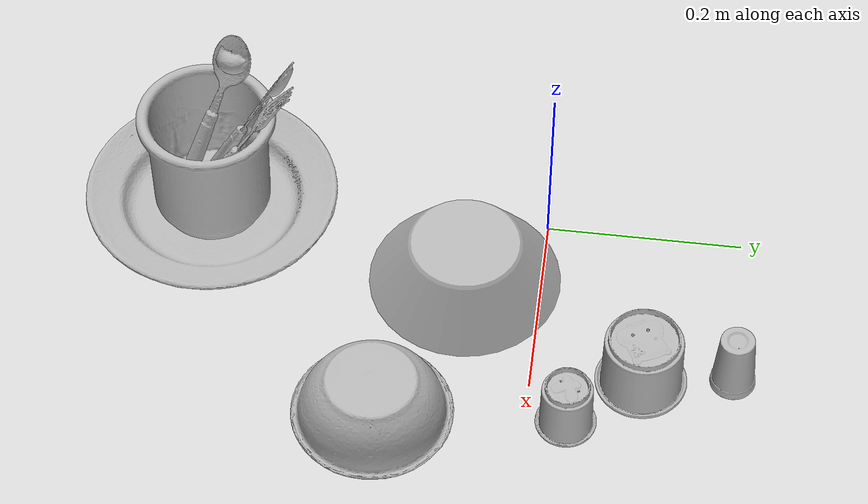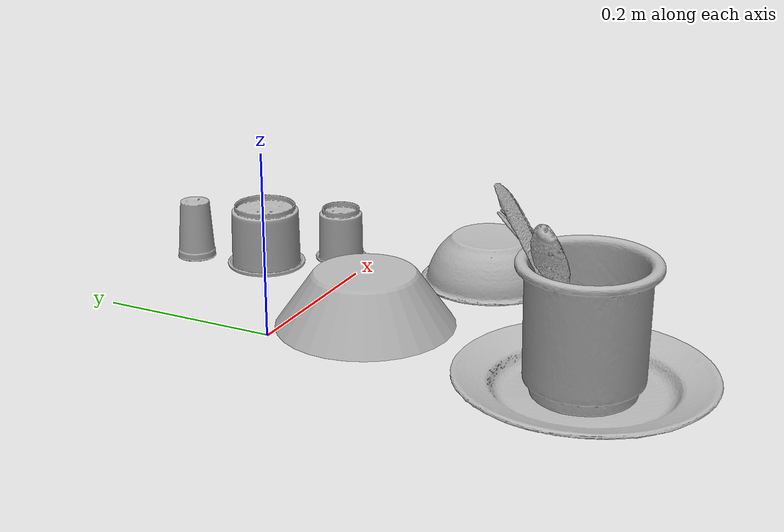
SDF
<?xml version="1.0" ?>
<sdf version="1.4">

  <world name="default">

    <light name="light1" type="point">

      <pose>0 0 1 0 0 0</pose>

      <diffuse>3 3 3 1</diffuse>

      <specular>3 3 3 1</specular>

    </light>

    <light name="light2" type="point">

      <pose>0 0.5 2 0 0 0</pose>

      <diffuse>1 1 1 1</diffuse>

      <specular>1 1 1 1</specular>

    </light>

    <light name="light3" type="point">

      <pose>0 0.5 2 0 0 0</pose>

      <diffuse>3 3 3 1</diffuse>

      <specular>3 3 3 1</specular>

    </light>

    <scene>

      <ambient>0.7 0.7 0.7</ambient>

    </scene>

    <model name="plate1">

      <link name="link_plate1">

        <collision name="default">

          <geometry>

            <mesh>

              <uri>model://plate/collision_meshes/collision.obj</uri>

              <scale>1.0 1.0 1.0</scale>

            </mesh>

          </geometry>

          <surface>

            <friction>

              <ode>

                <mu>0.5</mu>

                <mu2>0.5</mu2>

              </ode>

            </friction>

          </surface>

        </collision>

        <visual name="default">

          <geometry>

            <mesh>

              <uri>model://plate/visual_meshes/visual.dae</uri>

              <scale>1.0 1.0 1.0</scale>

            </mesh>

          </geometry>

        </visual>

        <inertial>

          <mass>0.188415065407753</mass>

          <pose>-0.0006044681649655104 0.0002782578521873802 -0.0010561991948634386 0.0022187970116661695 -0.0032254679619122127 0.4526056514331616</pose>

          <inertia>

            <ixx>0.00088140933</ixx>

            <iyy>0.000872979</iyy>

            <izz>0.0017239053</izz>

            <ixy>0</ixy>

            <ixz>0</ixz>

            <iyz>0</iyz>

          </inertia>

        </inertial>

      </link>

      <pose>0.009948790073394775 -0.35001340508461 0.013733495026826859 -1.2999873538440487e-06 -6.855991948289249e-06 -0.0003631257752966871</pose>

    </model>

    <model name="cup1">

      <link name="link_cup1">

        <collision name="default">

          <geometry>

            <mesh>

              <uri>model://d_cups/collision_meshes/collision.obj</uri>

              <scale>2.0 2.0 2.0</scale>

            </mesh>

          </geometry>

          <surface>

            <friction>

              <ode>

                <mu>0.5</mu>

                <mu2>0.5</mu2>

              </ode>

            </friction>

          </surface>

        </collision>

        <visual name="default">

          <geometry>

            <mesh>

              <uri>model://d_cups/visual_meshes/visual.dae</uri>

              <scale>2.0 2.0 2.0</scale>

            </mesh>

          </geometry>

        </visual>

        <inertial>

          <mass>0.39843064546585083</mass>

          <pose>0.0016136104241013527 0.0038234808016568422 -0.004533304367214441 0.24012134810188138 -0.24709791903716813 0.5942561701250738</pose>

          <inertia>

            <ixx>0.0013343208</ixx>

            <iyy>0.001330459</iyy>

            <izz>0.001207787</izz>

            <ixy>0</ixy>

            <ixz>0</ixz>

            <iyz>0</iyz>

          </inertia>

        </inertial>

      </link>

      <pose>0.00935608521103859 -0.3493598997592926 0.07326650619506836 0.001811140892218468 -0.009745304062483647 -0.02693424913792451</pose>

    </model>

    <model name="silverware1">

      <link name="link_silverware1">

        <collision name="default">

          <geometry>

            <mesh>

              <uri>model://knife/collision_meshes/collision.obj</uri>

              <scale>1.0 1.0 1.0</scale>

            </mesh>

          </geometry>

          <surface>

            <friction>

              <ode>

                <mu>0.5</mu>

                <mu2>0.5</mu2>

              </ode>

            </friction>

          </surface>

        </collision>

        <visual name="default">

          <geometry>

            <mesh>

              <uri>model://knife/visual_meshes/visual.dae</uri>

              <scale>1.0 1.0 1.0</scale>

            </mesh>

          </geometry>

        </visual>

        <inertial>

          <mass>0.027211036533117294</mass>

          <pose>-0.02378525771200657 0.0015275125624611974 5.062023410573602e-05 0.0730549860308878 0.01724841828598218 -0.007409817457274567</pose>

          <inertia>

            <ixx>7.723595e-07</ixx>

            <iyy>0.000104540384</iyy>

            <izz>0.00010478913</izz>

            <ixy>0</ixy>

            <ixz>0</ixz>

            <iyz>0</iyz>

          </inertia>

        </inertial>

      </link>

      <pose>-0.001595915644429624 -0.31288671493530273 0.1160086914896965 -0.5706196693837503 -1.0744898943072436 1.6994033232196273</pose>

    </model>

    <model name="silverware2">

      <link name="link_silverware2">

        <collision name="default">

          <geometry>

            <mesh>

              <uri>model://fork/collision_meshes/collision.obj</uri>

              <scale>1.0 1.0 1.0</scale>

            </mesh>

          </geometry>

          <surface>

            <friction>

              <ode>

                <mu>0.5</mu>

                <mu2>0.5</mu2>

              </ode>

            </friction>

          </surface>

        </collision>

        <visual name="default">

          <geometry>

            <mesh>

              <uri>model://fork/visual_meshes/visual.dae</uri>

              <scale>1.0 1.0 1.0</scale>

            </mesh>

          </geometry>

        </visual>

        <inertial>

          <mass>0.01567319966852665</mass>

          <pose>-0.029570044949650764 0.00046588233090005815 0.0003218860656488687 -0.013551693849150472 -0.010977837004960822 0.014453899894816049</pose>

          <inertia>

            <ixx>5.494343e-07</ixx>

            <iyy>4.0918225e-05</iyy>

            <izz>4.1163967e-05</izz>

            <ixy>0</ixy>

            <ixz>0</ixz>

            <iyz>0</iyz>

          </inertia>

        </inertial>

      </link>

      <pose>0.02090679667890072 -0.3192199170589447 0.1037764698266983 2.7818295991574216 -0.964735334628543 1.9127034169803112</pose>

    </model>

    <model name="silverware3">

      <link name="link_silverware3">

        <collision name="default">

          <geometry>

            <mesh>

              <uri>model://spoon/collision_meshes/collision.obj</uri>

              <scale>1.0 1.0 1.0</scale>

            </mesh>

          </geometry>

          <surface>

            <friction>

              <ode>

                <mu>0.5</mu>

                <mu2>0.5</mu2>

              </ode>

            </friction>

          </surface>

        </collision>

        <visual name="default">

          <geometry>

            <mesh>

              <uri>model://spoon/visual_meshes/visual.dae</uri>

              <scale>1.0 1.0 1.0</scale>

            </mesh>

          </geometry>

        </visual>

        <inertial>

          <mass>0.020675545558333397</mass>

          <pose>-0.0055263228714466095 -0.001603417913429439 -0.0007271659560501575 0.03521671071703309 -0.03906584129558259 0.006150610048623938</pose>

          <inertia>

            <ixx>1.1500075e-06</ixx>

            <iyy>7.866978e-05</iyy>

            <izz>7.923691e-05</izz>

            <ixy>0</ixy>

            <ixz>0</ixz>

            <iyz>0</iyz>

          </inertia>

        </inertial>

      </link>

      <pose>-0.021952524781227112 -0.3531002998352051 0.10560663044452667 0.27789784083530794 -0.9737477019147132 2.5504949174839795</pose>

    </model>

    <model name="cup3">

      <link name="link_cup3">

        <collision name="default">

          <geometry>

            <mesh>

              <uri>model://h_cups/collision_meshes/collision.obj</uri>

              <scale>1.0 1.0 1.0</scale>

            </mesh>

          </geometry>

          <surface>

            <friction>

              <ode>

                <mu>0.5</mu>

                <mu2>0.5</mu2>

              </ode>

            </friction>

          </surface>

        </collision>

        <visual name="default">

          <geometry>

            <mesh>

              <uri>model://h_cups/visual_meshes/visual.dae</uri>

              <scale>1.0 1.0 1.0</scale>

            </mesh>

          </geometry>

        </visual>

        <inertial>

          <mass>0.08491484075784683</mass>

          <pose>-2.702520214370452e-05 0.00023018663341645151 -0.0018405397422611713 -0.02436220805872295 0.06545280106490914 0.1288526015338695</pose>

          <inertia>

            <ixx>0.000109663546</ixx>

            <iyy>0.00010835491</iyy>

            <izz>0.00011500697</izz>

            <ixy>0</ixy>

            <ixz>0</ixz>

            <iyz>0</iyz>

          </inertia>

        </inertial>

      </link>

      <pose>0.18101224303245544 0.10986895859241486 0.037530023604631424 -3.1415926355799395 6.557261181480036e-08 0.5771811926270841</pose>

    </model>

    <model name="cup4">

      <link name="link_cup4">

        <collision name="default">

          <geometry>

            <mesh>

              <uri>model://cup_small/collision_meshes/collision.obj</uri>

              <scale>1.0 1.0 1.0</scale>

            </mesh>

          </geometry>

          <surface>

            <friction>

              <ode>

                <mu>0.5</mu>

                <mu2>0.5</mu2>

              </ode>

            </friction>

          </surface>

        </collision>

        <visual name="default">

          <geometry>

            <mesh>

              <uri>model://cup_small/visual_meshes/visual.dae</uri>

              <scale>1.0 1.0 1.0</scale>

            </mesh>

          </geometry>

        </visual>

        <inertial>

          <mass>0.024220753461122513</mass>

          <pose>0.00010482438665349036 -0.00033778438228182495 -0.010742821730673313 -0.011493274197159384 -0.01528013747447056 -0.5058088438882253</pose>

          <inertia>

            <ixx>1.4260815e-05</ixx>

            <iyy>1.433438e-05</iyy>

            <izz>6.4388e-06</izz>

            <ixy>0</ixy>

            <ixz>0</ixz>

            <iyz>0</iyz>

          </inertia>

        </inertial>

      </link>

      <pose>0.1691455841064453 0.19995178282260895 0.0346999429166317 -3.132433687473006 0.008649810801663731 0.0043135613964441575</pose>

    </model>

    <model name="cup5">

      <link name="link_cup5">

        <collision name="default">

          <geometry>

            <mesh>

              <uri>model://b_cups/collision_meshes/collision.obj</uri>

              <scale>1.0 1.0 1.0</scale>

            </mesh>

          </geometry>

          <surface>

            <friction>

              <ode>

                <mu>0.5</mu>

                <mu2>0.5</mu2>

              </ode>

            </friction>

          </surface>

        </collision>

        <visual name="default">

          <geometry>

            <mesh>

              <uri>model://b_cups/visual_meshes/visual.dae</uri>

              <scale>1.0 1.0 1.0</scale>

            </mesh>

          </geometry>

        </visual>

        <inertial>

          <mass>0.049698356539011</mass>

          <pose>0.0005182003951631486 0.0018058595014736056 -0.0013381819007918239 0.1135633586286738 0.03872473724046268 -0.3456911343663658</pose>

          <inertia>

            <ixx>3.2531058e-05</ixx>

            <iyy>3.1913434e-05</iyy>

            <izz>2.7374275e-05</izz>

            <ixy>0</ixy>

            <ixz>0</ixz>

            <iyz>0</iyz>

          </inertia>

        </inertial>

      </link>

      <pose>0.23877058923244476 0.0404667966067791 0.032155077904462814 3.1415881368022487 1.7456852468489436e-06 0.25758116269015313</pose>

    </model>

    <model name="bowl1">

      <link name="link_bowl1">

        <collision name="default">

          <geometry>

            <mesh>

              <uri>model://bowl/collision_meshes/collision.obj</uri>

              <scale>1.0 1.0 1.0</scale>

            </mesh>

          </geometry>

          <surface>

            <friction>

              <ode>

                <mu>0.5</mu>

                <mu2>0.5</mu2>

              </ode>

            </friction>

          </surface>

        </collision>

        <visual name="default">

          <geometry>

            <mesh>

              <uri>model://bowl/visual_meshes/visual.dae</uri>

              <scale>1.0 1.0 1.0</scale>

            </mesh>

          </geometry>

        </visual>

        <inertial>

          <mass>0.10713337361812592</mass>

          <pose>0.00020444899564608932 -0.001030207029543817 -0.0008042642148211598 -0.015763984617069283 0.014546905390658569 0.7140476331316008</pose>

          <inertia>

            <ixx>0.0002460938</ixx>

            <iyy>0.00024059511</iyy>

            <izz>0.00041401442</izz>

            <ixy>0</ixy>

            <ixz>0</ixz>

            <iyz>0</iyz>

          </inertia>

        </inertial>

      </link>

      <pose>0.24987435340881348 -0.14994382858276367 0.027247333899140358 -3.132723858769337 0.0006755927424187458 -1.1892649817679262</pose>

    </model>

    <model name="bowl2">

      <link name="link_bowl2">

        <collision name="default">

          <geometry>

            <mesh>

              <uri>model://bowl_a/collision_meshes/collision.obj</uri>

              <scale>1.0 1.0 1.0</scale>

            </mesh>

          </geometry>

          <surface>

            <friction>

              <ode>

                <mu>0.5</mu>

                <mu2>0.5</mu2>

              </ode>

            </friction>

          </surface>

        </collision>

        <visual name="default">

          <geometry>

            <mesh>

              <uri>model://bowl_a/visual_meshes/visual.dae</uri>

              <scale>1.0 1.0 1.0</scale>

            </mesh>

          </geometry>

        </visual>

        <inertial>

          <mass>0.5226007103919983</mass>

          <pose>0.00027867400785908103 4.731409717351198e-05 -0.0013765293406322598 -0.0009805372975616423 -0.0010938241101444716 -0.19123543414166835</pose>

          <inertia>

            <ixx>0.0014878683</ixx>

            <iyy>0.0014970028</iyy>

            <izz>0.0026462309</izz>

            <ixy>0</ixy>

            <ixz>0</ixz>

            <iyz>0</iyz>

          </inertia>

        </inertial>

      </link>

      <pose>0.07465151697397232 -0.07807993143796921 0.029796045273542404 -3.1395569148217044 -0.0006469552348340298 -1.2110030040767767</pose>

    </model>

  </world>

</sdf>
